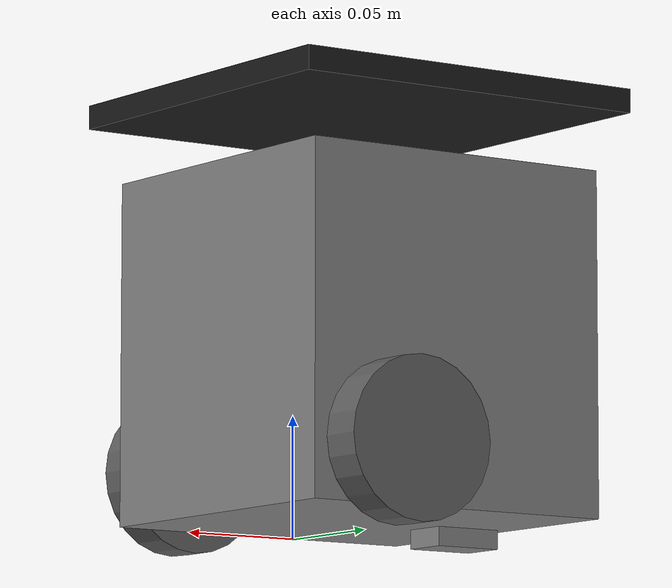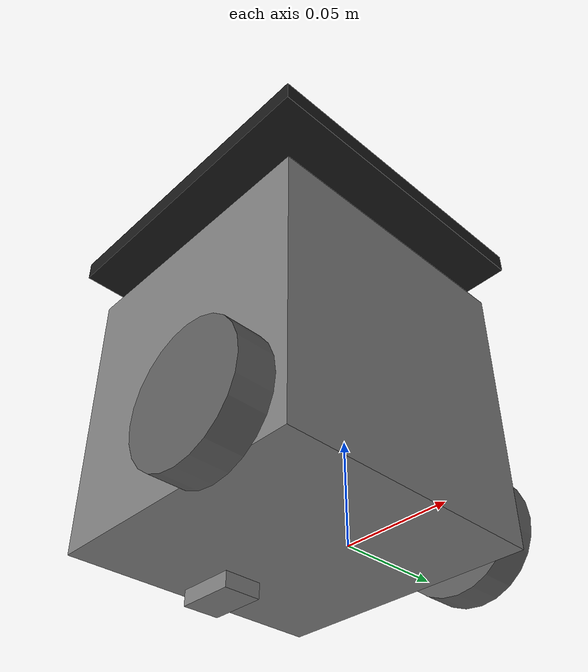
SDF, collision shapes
<?xml version="1.0" ?>
<sdf version='1.9'>
  <model name='turtlebot3_burger'>

    <link name='base_footprint'>
      <inertial>
        <pose>-0.00429 0 0.030734 0 0 0</pose>
        <mass>0.944735</mass>
        <inertia>
          <ixx>0.00717896</ixx> <ixy>-1.22941e-05</ixy> <ixz>0.00057674</ixz>
          <iyy>0.00721804</iyy> <iyz>-5.01209e-06</iyz> <izz>0.00413858</izz>
        </inertia>
      </inertial>

      <collision name='base_footprint_fixed_joint_lump__base_link_collision'>
        <pose>-0.032 0 0.08 0 0 0</pose>
        <geometry><box><size>0.14 0.14 0.143</size></box></geometry>
      </collision>

      <collision name='base_footprint_fixed_joint_lump__caster_back_link_collision_1'>
        <pose>-0.081 0 0.005 -1.57 0 0</pose>
        <geometry><box><size>0.03 0.009 0.02</size></box></geometry>
      </collision>

      <visual name='base_footprint_fixed_joint_lump__base_link_visual'>
        <pose>-0.032 0 0.01 0 0 0</pose>
        <geometry>
          <mesh>
            <scale>0.001 0.001 0.001</scale>
            <uri>model://turtlebot3_description/meshes/bases/burger_base.stl</uri>
          </mesh>
        </geometry>
        <material><diffuse>0.5 0.5 0.5 1</diffuse><ambient>0.5 0.5 0.5 1</ambient></material>
      </visual>
    </link>

    <link name='cargo_platform'>
      <pose>-0.032 0 0.18 0 0 0</pose>
      <collision name='platform_collision'>
        <geometry><box><size>0.16 0.16 0.01</size></box></geometry>
        <surface>
          <friction>
            <ode><mu>10.0</mu><mu2>10.0</mu2></ode>
          </friction>
        </surface>
      </collision>
      <visual name='platform_visual'>
        <geometry><box><size>0.16 0.16 0.01</size></box></geometry>
        <material>
          <diffuse>0.1 0.1 0.1 1</diffuse>
          <ambient>0.1 0.1 0.1 1</ambient>
        </material>
      </visual>
    </link>

    <joint name='platform_joint' type='fixed'>
      <parent>base_footprint</parent>
      <child>cargo_platform</child>
    </joint>

    <joint name='wheel_left_joint' type='revolute'>
      <pose relative_to='base_footprint'>0 0.08 0.033 -1.57 0 0</pose>
      <parent>base_footprint</parent>
      <child>wheel_left_link</child>
      <axis>
        <xyz>0 0 1</xyz>
        <limit><lower>-1e+16</lower><upper>1e+16</upper></limit>
      </axis>
    </joint>

    <link name='wheel_left_link'>
      <pose relative_to='wheel_left_joint'>0 0 0 0 0 0</pose>
      <inertial>
        <pose>0 0 0 0 0 0</pose>
        <mass>0.0284989</mass>
        <inertia>
          <ixx>1.11756e-05</ixx> <ixy>-4.23698e-11</ixy> <ixz>-5.93817e-09</ixz>
          <iyy>1.11924e-05</iyy> <iyz>-1.44001e-11</iyz> <izz>2.07126e-05</izz>
        </inertia>
      </inertial>
      <collision name='wheel_left_link_collision'>
        <geometry><cylinder><length>0.018</length><radius>0.033</radius></cylinder></geometry>
        <surface><friction><ode><mu>10.0</mu><mu2>10.0</mu2></ode></friction></surface>
      </collision>
      <visual name='wheel_left_link_visual'>
        <pose>0 0 0 1.57 0 0</pose>
        <geometry><mesh><scale>0.001 0.001 0.001</scale><uri>model://turtlebot3_description/meshes/wheels/left_tire.stl</uri></mesh></geometry>
        <material><diffuse>0.375 0.375 0.375 1</diffuse><ambient>0.375 0.375 0.375 1</ambient></material>
      </visual>
    </link>

    <joint name='wheel_right_joint' type='revolute'>
      <pose relative_to='base_footprint'>0 -0.08 0.033 -1.57 0 0</pose>
      <parent>base_footprint</parent>
      <child>wheel_right_link</child>
      <axis>
        <xyz>0 0 1</xyz>
        <limit><lower>-1e+16</lower><upper>1e+16</upper></limit>
      </axis>
    </joint>

    <link name='wheel_right_link'>
      <pose relative_to='wheel_right_joint'>0 0 0 0 0 0</pose>
      <inertial>
        <pose>0 0 0 0 0 0</pose>
        <mass>0.0284989</mass>
        <inertia>
          <ixx>1.11756e-05</ixx> <ixy>-4.23698e-11</ixy> <ixz>-5.93817e-09</ixz>
          <iyy>1.11924e-05</iyy> <iyz>-1.44001e-11</iyz> <izz>2.07126e-05</izz>
        </inertia>
      </inertial>
      <collision name='wheel_right_link_collision'>
        <geometry><cylinder><length>0.018</length><radius>0.033</radius></cylinder></geometry>
        <surface><friction><ode><mu>10.0</mu><mu2>10.0</mu2></ode></friction></surface>
      </collision>
      <visual name='wheel_right_link_visual'>
        <pose>0 0 0 1.57 0 0</pose>
        <geometry><mesh><scale>0.001 0.001 0.001</scale><uri>model://turtlebot3_description/meshes/wheels/right_tire.stl</uri></mesh></geometry>
        <material><diffuse>0.375 0.375 0.375 1</diffuse><ambient>0.375 0.375 0.375 1</ambient></material>
      </visual>
    </link>

    <link name='camera_down_link'>
       <pose>0.07 0 0.11 0 1.3 0</pose>
      <inertial>
        <mass>0.01</mass>
        <inertia>
          <ixx>0.0001</ixx> <ixy>0</ixy> <ixz>0</ixz>
          <iyy>0.0001</iyy> <iyz>0</iyz> <izz>0.0001</izz>
        </inertia>
      </inertial>
      <sensor name="camera_down" type="camera">
        <always_on>1</always_on>
        <update_rate>30</update_rate>
        <visualize>true</visualize>
        <topic>/model/turtlebot3_burger/camera_down</topic>
        <camera>
          <horizontal_fov>1.047</horizontal_fov>
          <image>
            <width>1280</width> <height>960</height>
          </image>
          <clip>
            <near>0.01</near>
            <far>3.0</far>
          </clip>
        </camera>
      </sensor>
    </link>

    <joint name='camera_down_joint' type='fixed'>
      <parent>base_footprint</parent>
      <child>camera_down_link</child>
    </joint>

    <plugin
      filename="libignition-gazebo-diff-drive-system.so"
      name="ignition::gazebo::systems::DiffDrive">
      <left_joint>wheel_left_joint</left_joint>
      <right_joint>wheel_right_joint</right_joint>
      <wheel_separation>0.160</wheel_separation>
      <wheel_radius>0.033</wheel_radius>
      <odom_publish_frequency>30</odom_publish_frequency>
      <topic>/model/turtlebot3_burger/cmd_vel</topic>
      <odom_topic>/model/turtlebot3_burger/odometry</odom_topic>
      <tf_topic>/model/turtlebot3_burger/tf</tf_topic>
      <frame_id>odom</frame_id>
      <child_frame_id>base_footprint</child_frame_id>
    </plugin>

    <plugin
      filename="libignition-gazebo-joint-state-publisher-system.so"
      name="ignition::gazebo::systems::JointStatePublisher">
      <topic>/model/turtlebot3_burger/joint_states</topic>
    </plugin>

  </model>
</sdf>
